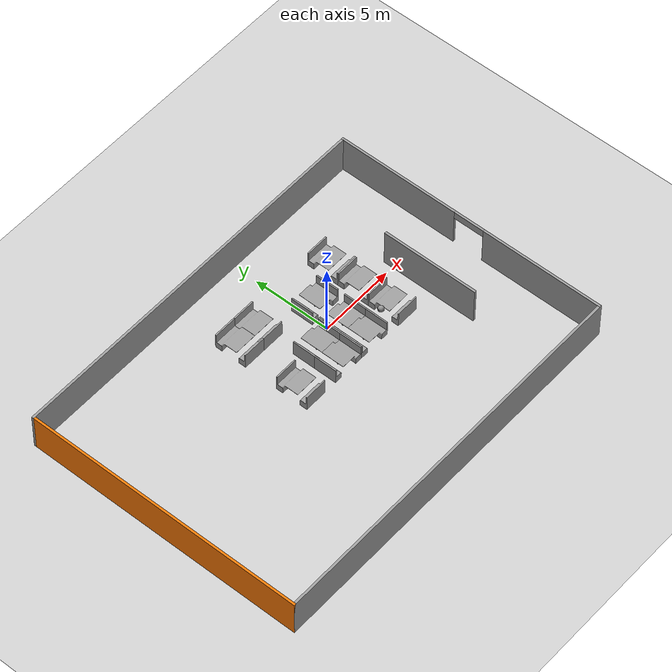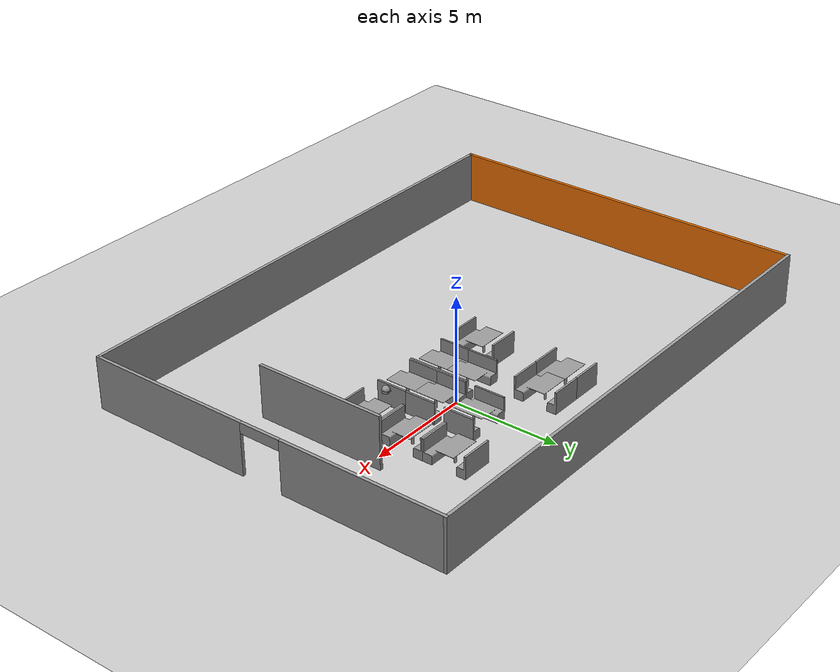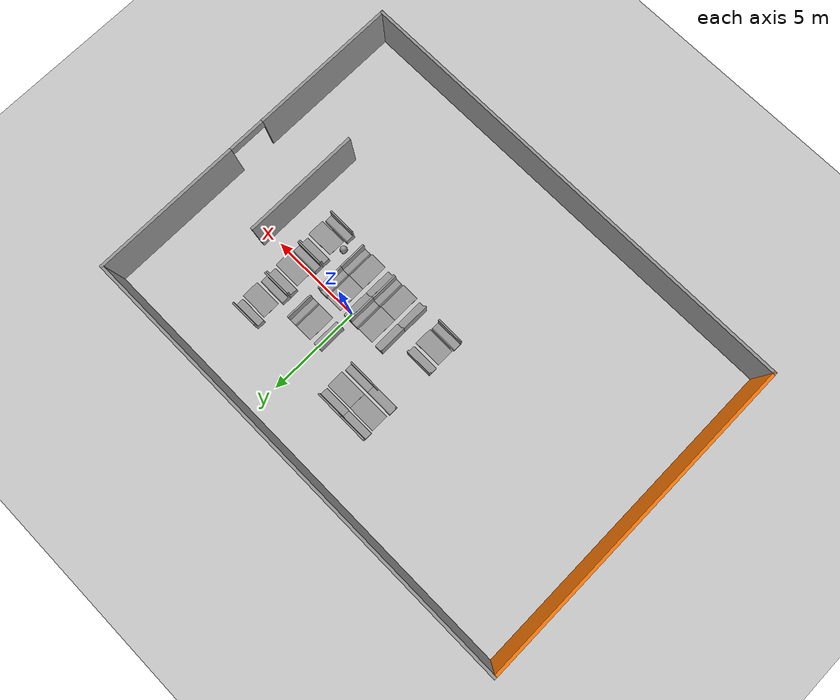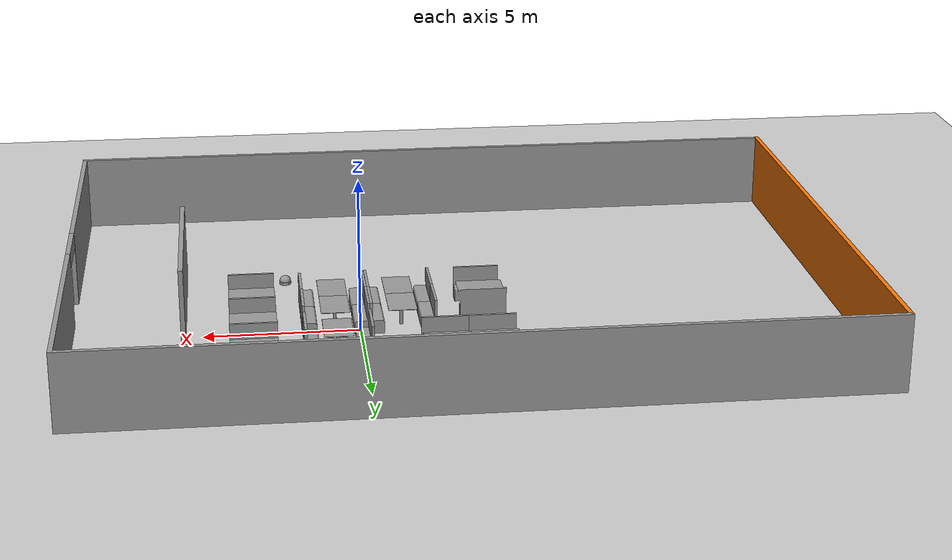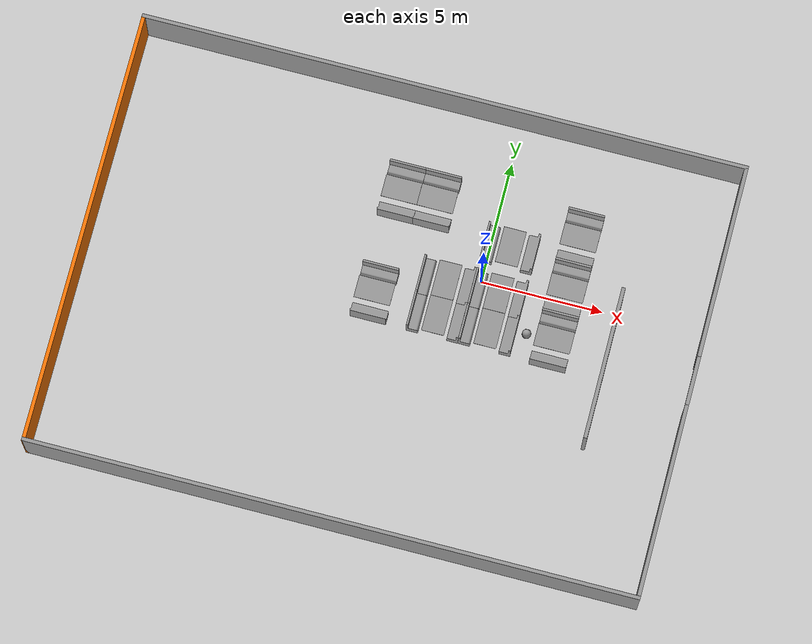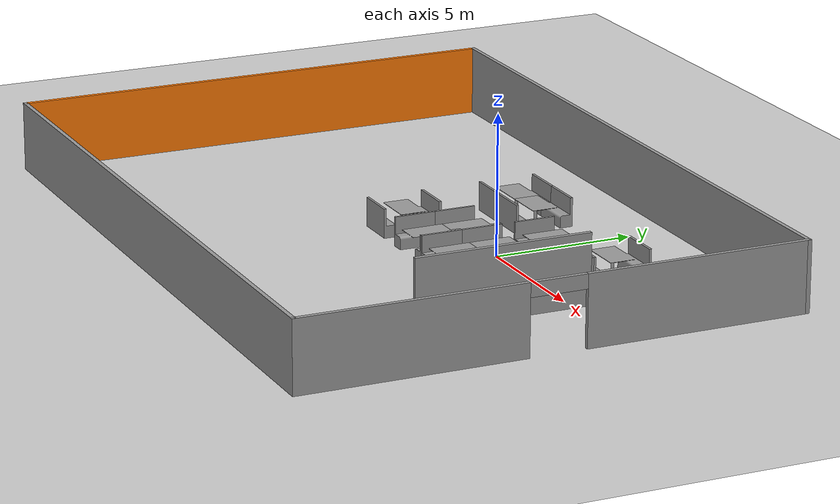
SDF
<sdf version="1.6">
 <world name="default">
  <model name="ground_plane">
   <static>1</static>
   <link name="link">
    <collision name="collision">
     <geometry><plane><normal>0 0 1</normal><size>100 100</size></plane></geometry>
     <surface><friction><ode><mu>100</mu><mu2>50</mu2></ode></friction></surface>
    </collision>
    <visual name="visual">
     <cast_shadows>0</cast_shadows>
     <geometry><plane><normal>0 0 1</normal><size>100 100</size></plane></geometry>
     <material>
      <script><uri>file://media/materials/scripts/gazebo.material</uri><name>Gazebo/Grey</name></script>
     </material>
    </visual>
   </link>
  </model>
  <model name="restaurant">
   <pose>-3.2864 -2.31047 0 0 -0 0</pose>
   <link name="Wall_10">
    <collision name="Wall_10_Collision">
     <geometry><box><size>18 0.15 2.5</size></box></geometry>
     <pose>0 0 1.25 0 -0 0</pose>
    </collision>
    <visual name="Wall_10_Visual">
     <pose>0 0 1.25 0 -0 0</pose>
     <geometry><box><size>18 0.15 2.5</size></box></geometry>
     <material>
      <script><uri>file://media/materials/scripts/gazebo.material</uri><name>Gazebo/Grey</name></script>
      <ambient>0.996078 0.47451 0.0196078 1</ambient>
     </material>
     <meta><layer>0</layer></meta>
    </visual>
    <pose>-12.425 -0.0001 0 0 0 -1.5708</pose>
   </link>
   <link name="Wall_12">
    <collision name="Wall_12_Collision">
     <geometry><box><size>25 0.15 2.5</size></box></geometry>
     <pose>0 0 1.25 0 -0 0</pose>
    </collision>
    <visual name="Wall_12_Visual">
     <pose>0 0 1.25 0 -0 0</pose>
     <geometry><box><size>25 0.15 2.5</size></box></geometry>
     <material>
      <script><uri>file://media/materials/scripts/gazebo.material</uri><name>Gazebo/Grey</name></script>
      <ambient>1 1 1 1</ambient>
     </material>
     <meta><layer>0</layer></meta>
    </visual>
    <pose>-1e-06 -8.9251 0 0 -0 0</pose>
   </link>
   <link name="Wall_14">
    <pose>12.425 1e-05 0 0 -0 1.5708</pose>
    <visual name="Wall_14_Visual_0">
     <pose>-5.00641 0 1.25 0 -0 0</pose>
     <geometry><box><size>7.98717 0.15 2.5</size></box></geometry>
     <material>
      <script><uri>file://media/materials/scripts/gazebo.material</uri><name>Gazebo/Grey</name></script>
      <ambient>1 1 1 1</ambient>
     </material>
     <meta><layer>0</layer></meta>
    </visual>
    <collision name="Wall_14_Collision_0">
     <geometry><box><size>7.98717 0.15 2.5</size></box></geometry>
     <pose>-5.00641 0 1.25 0 -0 0</pose>
    </collision>
    <visual name="Wall_14_Visual_1">
     <pose>4.99359 0 1.25 0 -0 0</pose>
     <geometry><box><size>8.01282 0.15 2.5</size></box></geometry>
     <material>
      <script><uri>file://media/materials/scripts/gazebo.material</uri><name>Gazebo/Grey</name></script>
      <ambient>1 1 1 1</ambient>
     </material>
     <meta><layer>0</layer></meta>
    </visual>
    <collision name="Wall_14_Collision_1">
     <geometry><box><size>8.01282 0.15 2.5</size></box></geometry>
     <pose>4.99359 0 1.25 0 -0 0</pose>
    </collision>
    <visual name="Wall_14_Visual_2">
     <pose>-0.012825 0 2.25 0 -0 0</pose>
     <geometry><box><size>2 0.15 0.5</size></box></geometry>
     <material>
      <script><uri>file://media/materials/scripts/gazebo.material</uri><name>Gazebo/Grey</name></script>
      <ambient>1 1 1 1</ambient>
     </material>
     <meta><layer>0</layer></meta>
    </visual>
    <collision name="Wall_14_Collision_2">
     <geometry><box><size>2 0.15 0.5</size></box></geometry>
     <pose>-0.012825 0 2.25 0 -0 0</pose>
    </collision>
   </link>
   <link name="Wall_16">
    <collision name="Wall_16_Collision">
     <geometry><box><size>6.25 0.15 2.5</size></box></geometry>
     <pose>0 0 1.25 0 -0 0</pose>
    </collision>
    <visual name="Wall_16_Visual">
     <pose>0 0 1.25 0 -0 0</pose>
     <geometry><box><size>6.25 0.15 2.5</size></box></geometry>
     <material>
      <script><uri>file://media/materials/scripts/gazebo.material</uri><name>Gazebo/Grey</name></script>
      <ambient>1 1 1 1</ambient>
     </material>
     <meta><layer>0</layer></meta>
    </visual>
    <pose>8.88051 -0.186574 0 0 0 -1.5708</pose>
   </link>
   <link name="Wall_8">
    <collision name="Wall_8_Collision">
     <geometry><box><size>25 0.15 2.5</size></box></geometry>
     <pose>0 0 1.25 0 -0 0</pose>
    </collision>
    <visual name="Wall_8_Visual">
     <pose>0 0 1.25 0 -0 0</pose>
     <geometry><box><size>25 0.15 2.5</size></box></geometry>
     <material>
      <script><uri>file://media/materials/scripts/gazebo.material</uri><name>Gazebo/Grey</name></script>
      <ambient>1 1 1 1</ambient>
     </material>
     <meta><layer>0</layer></meta>
    </visual>
    <pose>1e-06 8.925 0 0 0 -3.14159</pose>
   </link>
   <static>1</static>
  </model>
  <model name="table_19">
   <link name="link_0">
    <inertial>
     <mass>1</mass>
     <inertia>
      <ixx>0.166667</ixx>
      <ixy>0</ixy>
      <ixz>0</ixz>
      <iyy>0.166667</iyy>
      <iyz>0</iyz>
      <izz>0.166667</izz>
     </inertia>
    </inertial>
    <visual name="visual">
     <pose>-1.9 -1.17 0 0 -0 0</pose>
     <geometry><mesh><uri>model://table/mesh/table.dae</uri><scale>0.6 0.6 0.6</scale></mesh></geometry>
     <material>
      <lighting>1</lighting>
      <script><uri>file://media/materials/scripts/gazebo.material</uri><name>Gazebo/Grey</name></script>
      <shader type="pixel"><normal_map>__default__</normal_map></shader>
      <ambient>0.3 0.3 0.3 1</ambient>
      <diffuse>0.7 0.7 0.7 1</diffuse>
      <specular>0.01 0.01 0.01 1</specular>
      <emissive>0 0 0 1</emissive>
     </material>
    </visual>
    <collision name="collision">
     <geometry><box><size>2.2 1.5 1.1</size></box></geometry>
     <surface>
      <friction>
       <ode><mu>1</mu><mu2>1</mu2><fdir1>0 0 0</fdir1><slip1>0</slip1><slip2>0</slip2></ode>
       <torsional>
        <coefficient>1</coefficient>
        <patch_radius>0</patch_radius>
        <surface_radius>0</surface_radius>
        <use_patch_radius>1</use_patch_radius>
        <ode><slip>0</slip></ode>
       </torsional>
      </friction>
      <bounce><restitution_coefficient>0</restitution_coefficient><threshold>1e+06</threshold></bounce>
      <contact>
       <collide_without_contact>0</collide_without_contact>
       <collide_without_contact_bitmask>1</collide_without_contact_bitmask>
       <collide_bitmask>1</collide_bitmask>
       <ode>
        <soft_cfm>0</soft_cfm>
        <soft_erp>0.2</soft_erp>
        <kp>1e+13</kp>
        <kd>1</kd>
        <max_vel>0.01</max_vel>
        <min_depth>0</min_depth>
       </ode>
       <bullet>
        <split_impulse>1</split_impulse>
        <split_impulse_penetration_threshold>-0.01</split_impulse_penetration_threshold>
        <soft_cfm>0</soft_cfm>
        <soft_erp>0.2</soft_erp>
        <kp>1e+13</kp>
        <kd>1</kd>
       </bullet>
      </contact>
     </surface>
    </collision>
   </link>
   <static>1</static>
   <pose>-4.00965 2.69108 0 0 -0 1.5708</pose>
  </model>
  <model name="table_24">
   <link name="link_0">
    <inertial>
     <mass>1</mass>
     <inertia>
      <ixx>0.166667</ixx>
      <ixy>0</ixy>
      <ixz>0</ixz>
      <iyy>0.166667</iyy>
      <iyz>0</iyz>
      <izz>0.166667</izz>
     </inertia>
    </inertial>
    <visual name="visual">
     <pose>-1.9 -1.17 0 0 -0 0</pose>
     <geometry><mesh><uri>model://table/mesh/table.dae</uri><scale>0.6 0.6 0.6</scale></mesh></geometry>
     <material>
      <lighting>1</lighting>
      <script><uri>file://media/materials/scripts/gazebo.material</uri><name>Gazebo/Grey</name></script>
      <shader type="pixel"><normal_map>__default__</normal_map></shader>
      <ambient>0.3 0.3 0.3 1</ambient>
      <diffuse>0.7 0.7 0.7 1</diffuse>
      <specular>0.01 0.01 0.01 1</specular>
      <emissive>0 0 0 1</emissive>
     </material>
    </visual>
    <collision name="collision">
     <geometry><box><size>2.2 1.5 1.1</size></box></geometry>
     <surface>
      <friction>
       <ode><mu>1</mu><mu2>1</mu2><fdir1>0 0 0</fdir1><slip1>0</slip1><slip2>0</slip2></ode>
       <torsional>
        <coefficient>1</coefficient>
        <patch_radius>0</patch_radius>
        <surface_radius>0</surface_radius>
        <use_patch_radius>1</use_patch_radius>
        <ode><slip>0</slip></ode>
       </torsional>
      </friction>
      <bounce><restitution_coefficient>0</restitution_coefficient><threshold>1e+06</threshold></bounce>
      <contact>
       <collide_without_contact>0</collide_without_contact>
       <collide_without_contact_bitmask>1</collide_without_contact_bitmask>
       <collide_bitmask>1</collide_bitmask>
       <ode>
        <soft_cfm>0</soft_cfm>
        <soft_erp>0.2</soft_erp>
        <kp>1e+13</kp>
        <kd>1</kd>
        <max_vel>0.01</max_vel>
        <min_depth>0</min_depth>
       </ode>
       <bullet>
        <split_impulse>1</split_impulse>
        <split_impulse_penetration_threshold>-0.01</split_impulse_penetration_threshold>
        <soft_cfm>0</soft_cfm>
        <soft_erp>0.2</soft_erp>
        <kp>1e+13</kp>
        <kd>1</kd>
       </bullet>
      </contact>
     </surface>
    </collision>
   </link>
   <static>1</static>
   <pose>0.800593 1.51383 0 0 -0 0</pose>
  </model>
  <model name="table_25">
   <link name="link_0">
    <inertial>
     <mass>1</mass>
     <inertia>
      <ixx>0.166667</ixx>
      <ixy>0</ixy>
      <ixz>0</ixz>
      <iyy>0.166667</iyy>
      <iyz>0</iyz>
      <izz>0.166667</izz>
     </inertia>
    </inertial>
    <visual name="visual">
     <pose>-1.9 -1.17 0 0 -0 0</pose>
     <geometry><mesh><uri>model://table/mesh/table.dae</uri><scale>0.6 0.6 0.6</scale></mesh></geometry>
     <material>
      <lighting>1</lighting>
      <script><uri>file://media/materials/scripts/gazebo.material</uri><name>Gazebo/Grey</name></script>
      <shader type="pixel"><normal_map>__default__</normal_map></shader>
      <ambient>0.3 0.3 0.3 1</ambient>
      <diffuse>0.7 0.7 0.7 1</diffuse>
      <specular>0.01 0.01 0.01 1</specular>
      <emissive>0 0 0 1</emissive>
     </material>
    </visual>
    <collision name="collision">
     <geometry><box><size>2.2 1.5 1.1</size></box></geometry>
     <surface>
      <friction>
       <ode><mu>1</mu><mu2>1</mu2><fdir1>0 0 0</fdir1><slip1>0</slip1><slip2>0</slip2></ode>
       <torsional>
        <coefficient>1</coefficient>
        <patch_radius>0</patch_radius>
        <surface_radius>0</surface_radius>
        <use_patch_radius>1</use_patch_radius>
        <ode><slip>0</slip></ode>
       </torsional>
      </friction>
      <bounce><restitution_coefficient>0</restitution_coefficient><threshold>1e+06</threshold></bounce>
      <contact>
       <collide_without_contact>0</collide_without_contact>
       <collide_without_contact_bitmask>1</collide_without_contact_bitmask>
       <collide_bitmask>1</collide_bitmask>
       <ode>
        <soft_cfm>0</soft_cfm>
        <soft_erp>0.2</soft_erp>
        <kp>1e+13</kp>
        <kd>1</kd>
        <max_vel>0.01</max_vel>
        <min_depth>0</min_depth>
       </ode>
       <bullet>
        <split_impulse>1</split_impulse>
        <split_impulse_penetration_threshold>-0.01</split_impulse_penetration_threshold>
        <soft_cfm>0</soft_cfm>
        <soft_erp>0.2</soft_erp>
        <kp>1e+13</kp>
        <kd>1</kd>
       </bullet>
      </contact>
     </surface>
    </collision>
   </link>
   <static>1</static>
   <pose>0.79719 -0.454003 0 0 -0 0</pose>
  </model>
  <model name="table_26">
   <link name="link_0">
    <inertial>
     <mass>1</mass>
     <inertia>
      <ixx>0.166667</ixx>
      <ixy>0</ixy>
      <ixz>0</ixz>
      <iyy>0.166667</iyy>
      <iyz>0</iyz>
      <izz>0.166667</izz>
     </inertia>
    </inertial>
    <visual name="visual">
     <pose>-1.9 -1.17 0 0 -0 0</pose>
     <geometry><mesh><uri>model://table/mesh/table.dae</uri><scale>0.6 0.6 0.6</scale></mesh></geometry>
     <material>
      <lighting>1</lighting>
      <script><uri>file://media/materials/scripts/gazebo.material</uri><name>Gazebo/Grey</name></script>
      <shader type="pixel"><normal_map>__default__</normal_map></shader>
      <ambient>0.3 0.3 0.3 1</ambient>
      <diffuse>0.7 0.7 0.7 1</diffuse>
      <specular>0.01 0.01 0.01 1</specular>
      <emissive>0 0 0 1</emissive>
     </material>
    </visual>
    <collision name="collision">
     <geometry><box><size>2.2 1.5 1.1</size></box></geometry>
     <surface>
      <friction>
       <ode><mu>1</mu><mu2>1</mu2><fdir1>0 0 0</fdir1><slip1>0</slip1><slip2>0</slip2></ode>
       <torsional>
        <coefficient>1</coefficient>
        <patch_radius>0</patch_radius>
        <surface_radius>0</surface_radius>
        <use_patch_radius>1</use_patch_radius>
        <ode><slip>0</slip></ode>
       </torsional>
      </friction>
      <bounce><restitution_coefficient>0</restitution_coefficient><threshold>1e+06</threshold></bounce>
      <contact>
       <collide_without_contact>0</collide_without_contact>
       <collide_without_contact_bitmask>1</collide_without_contact_bitmask>
       <collide_bitmask>1</collide_bitmask>
       <ode>
        <soft_cfm>0</soft_cfm>
        <soft_erp>0.2</soft_erp>
        <kp>1e+13</kp>
        <kd>1</kd>
        <max_vel>0.01</max_vel>
        <min_depth>0</min_depth>
       </ode>
       <bullet>
        <split_impulse>1</split_impulse>
        <split_impulse_penetration_threshold>-0.01</split_impulse_penetration_threshold>
        <soft_cfm>0</soft_cfm>
        <soft_erp>0.2</soft_erp>
        <kp>1e+13</kp>
        <kd>1</kd>
       </bullet>
      </contact>
     </surface>
    </collision>
   </link>
   <static>1</static>
   <pose>0.797327 -1.94103 0 0 -0 0</pose>
  </model>
  <model name="table_28">
   <link name="link_0">
    <inertial>
     <mass>1</mass>
     <inertia>
      <ixx>0.166667</ixx>
      <ixy>0</ixy>
      <ixz>0</ixz>
      <iyy>0.166667</iyy>
      <iyz>0</iyz>
      <izz>0.166667</izz>
     </inertia>
    </inertial>
    <visual name="visual">
     <pose>-1.9 -1.17 0 0 -0 0</pose>
     <geometry><mesh><uri>model://table/mesh/table.dae</uri><scale>0.6 0.6 0.6</scale></mesh></geometry>
     <material>
      <lighting>1</lighting>
      <script><uri>file://media/materials/scripts/gazebo.material</uri><name>Gazebo/Grey</name></script>
      <shader type="pixel"><normal_map>__default__</normal_map></shader>
      <ambient>0.3 0.3 0.3 1</ambient>
      <diffuse>0.7 0.7 0.7 1</diffuse>
      <specular>0.01 0.01 0.01 1</specular>
      <emissive>0 0 0 1</emissive>
     </material>
    </visual>
    <collision name="collision">
     <geometry><box><size>2.2 1.5 1.1</size></box></geometry>
     <surface>
      <friction>
       <ode><mu>1</mu><mu2>1</mu2><fdir1>0 0 0</fdir1><slip1>0</slip1><slip2>0</slip2></ode>
       <torsional>
        <coefficient>1</coefficient>
        <patch_radius>0</patch_radius>
        <surface_radius>0</surface_radius>
        <use_patch_radius>1</use_patch_radius>
        <ode><slip>0</slip></ode>
       </torsional>
      </friction>
      <bounce><restitution_coefficient>0</restitution_coefficient><threshold>1e+06</threshold></bounce>
      <contact>
       <collide_without_contact>0</collide_without_contact>
       <collide_without_contact_bitmask>1</collide_without_contact_bitmask>
       <collide_bitmask>1</collide_bitmask>
       <ode>
        <soft_cfm>0</soft_cfm>
        <soft_erp>0.2</soft_erp>
        <kp>1e+13</kp>
        <kd>1</kd>
        <max_vel>0.01</max_vel>
        <min_depth>0</min_depth>
       </ode>
       <bullet>
        <split_impulse>1</split_impulse>
        <split_impulse_penetration_threshold>-0.01</split_impulse_penetration_threshold>
        <soft_cfm>0</soft_cfm>
        <soft_erp>0.2</soft_erp>
        <kp>1e+13</kp>
        <kd>1</kd>
       </bullet>
      </contact>
     </surface>
    </collision>
   </link>
   <static>1</static>
   <pose>-4.00625 -1.59763 0 0 -0 1.5708</pose>
  </model>
  <model name="table_31">
   <link name="link_0">
    <inertial>
     <mass>1</mass>
     <inertia>
      <ixx>0.166667</ixx>
      <ixy>0</ixy>
      <ixz>0</ixz>
      <iyy>0.166667</iyy>
      <iyz>0</iyz>
      <izz>0.166667</izz>
     </inertia>
    </inertial>
    <visual name="visual">
     <pose>-1.9 -1.17 0 0 -0 0</pose>
     <geometry><mesh><uri>model://table/mesh/table.dae</uri><scale>0.6 0.6 0.6</scale></mesh></geometry>
     <material>
      <lighting>1</lighting>
      <script><uri>file://media/materials/scripts/gazebo.material</uri><name>Gazebo/Grey</name></script>
      <shader type="pixel"><normal_map>__default__</normal_map></shader>
      <ambient>0.3 0.3 0.3 1</ambient>
      <diffuse>0.7 0.7 0.7 1</diffuse>
      <specular>0.01 0.01 0.01 1</specular>
      <emissive>0 0 0 1</emissive>
     </material>
    </visual>
    <collision name="collision">
     <geometry><box><size>2.2 1.5 1.1</size></box></geometry>
     <surface>
      <friction>
       <ode><mu>1</mu><mu2>1</mu2><fdir1>0 0 0</fdir1><slip1>0</slip1><slip2>0</slip2></ode>
       <torsional>
        <coefficient>1</coefficient>
        <patch_radius>0</patch_radius>
        <surface_radius>0</surface_radius>
        <use_patch_radius>1</use_patch_radius>
        <ode><slip>0</slip></ode>
       </torsional>
      </friction>
      <bounce><restitution_coefficient>0</restitution_coefficient><threshold>1e+06</threshold></bounce>
      <contact>
       <collide_without_contact>0</collide_without_contact>
       <collide_without_contact_bitmask>1</collide_without_contact_bitmask>
       <collide_bitmask>1</collide_bitmask>
       <ode>
        <soft_cfm>0</soft_cfm>
        <soft_erp>0.2</soft_erp>
        <kp>1e+13</kp>
        <kd>1</kd>
        <max_vel>0.01</max_vel>
        <min_depth>0</min_depth>
       </ode>
       <bullet>
        <split_impulse>1</split_impulse>
        <split_impulse_penetration_threshold>-0.01</split_impulse_penetration_threshold>
        <soft_cfm>0</soft_cfm>
        <soft_erp>0.2</soft_erp>
        <kp>1e+13</kp>
        <kd>1</kd>
       </bullet>
      </contact>
     </surface>
    </collision>
   </link>
   <static>1</static>
   <pose>-1.34795 -1.94345 0 0 -0 0</pose>
  </model>
  <model name="table_32">
   <link name="link_0">
    <inertial>
     <mass>1</mass>
     <inertia>
      <ixx>0.166667</ixx>
      <ixy>0</ixy>
      <ixz>0</ixz>
      <iyy>0.166667</iyy>
      <iyz>0</iyz>
      <izz>0.166667</izz>
     </inertia>
    </inertial>
    <visual name="visual">
     <pose>-1.9 -1.17 0 0 -0 0</pose>
     <geometry><mesh><uri>model://table/mesh/table.dae</uri><scale>0.6 0.6 0.6</scale></mesh></geometry>
     <material>
      <lighting>1</lighting>
      <script><uri>file://media/materials/scripts/gazebo.material</uri><name>Gazebo/Grey</name></script>
      <shader type="pixel"><normal_map>__default__</normal_map></shader>
      <ambient>0.3 0.3 0.3 1</ambient>
      <diffuse>0.7 0.7 0.7 1</diffuse>
      <specular>0.01 0.01 0.01 1</specular>
      <emissive>0 0 0 1</emissive>
     </material>
    </visual>
    <collision name="collision">
     <geometry><box><size>2.2 1.5 1.1</size></box></geometry>
     <surface>
      <friction>
       <ode><mu>1</mu><mu2>1</mu2><fdir1>0 0 0</fdir1><slip1>0</slip1><slip2>0</slip2></ode>
       <torsional>
        <coefficient>1</coefficient>
        <patch_radius>0</patch_radius>
        <surface_radius>0</surface_radius>
        <use_patch_radius>1</use_patch_radius>
        <ode><slip>0</slip></ode>
       </torsional>
      </friction>
      <bounce><restitution_coefficient>0</restitution_coefficient><threshold>1e+06</threshold></bounce>
      <contact>
       <collide_without_contact>0</collide_without_contact>
       <collide_without_contact_bitmask>1</collide_without_contact_bitmask>
       <collide_bitmask>1</collide_bitmask>
       <ode>
        <soft_cfm>0</soft_cfm>
        <soft_erp>0.2</soft_erp>
        <kp>1e+13</kp>
        <kd>1</kd>
        <max_vel>0.01</max_vel>
        <min_depth>0</min_depth>
       </ode>
       <bullet>
        <split_impulse>1</split_impulse>
        <split_impulse_penetration_threshold>-0.01</split_impulse_penetration_threshold>
        <soft_cfm>0</soft_cfm>
        <soft_erp>0.2</soft_erp>
        <kp>1e+13</kp>
        <kd>1</kd>
       </bullet>
      </contact>
     </surface>
    </collision>
   </link>
   <static>1</static>
   <pose>-1.34658 -0.457264 0 0 -0 0</pose>
  </model>
  <model name="table_33">
   <link name="link_0">
    <inertial>
     <mass>1</mass>
     <inertia>
      <ixx>0.166667</ixx>
      <ixy>0</ixy>
      <ixz>0</ixz>
      <iyy>0.166667</iyy>
      <iyz>0</iyz>
      <izz>0.166667</izz>
     </inertia>
    </inertial>
    <visual name="visual">
     <pose>-1.9 -1.17 0 0 -0 0</pose>
     <geometry><mesh><uri>model://table/mesh/table.dae</uri><scale>0.6 0.6 0.6</scale></mesh></geometry>
     <material>
      <lighting>1</lighting>
      <script><uri>file://media/materials/scripts/gazebo.material</uri><name>Gazebo/Grey</name></script>
      <shader type="pixel"><normal_map>__default__</normal_map></shader>
      <ambient>0.3 0.3 0.3 1</ambient>
      <diffuse>0.7 0.7 0.7 1</diffuse>
      <specular>0.01 0.01 0.01 1</specular>
      <emissive>0 0 0 1</emissive>
     </material>
    </visual>
    <collision name="collision">
     <geometry><box><size>2.2 1.5 1.1</size></box></geometry>
     <surface>
      <friction>
       <ode><mu>1</mu><mu2>1</mu2><fdir1>0 0 0</fdir1><slip1>0</slip1><slip2>0</slip2></ode>
       <torsional>
        <coefficient>1</coefficient>
        <patch_radius>0</patch_radius>
        <surface_radius>0</surface_radius>
        <use_patch_radius>1</use_patch_radius>
        <ode><slip>0</slip></ode>
       </torsional>
      </friction>
      <bounce><restitution_coefficient>0</restitution_coefficient><threshold>1e+06</threshold></bounce>
      <contact>
       <collide_without_contact>0</collide_without_contact>
       <collide_without_contact_bitmask>1</collide_without_contact_bitmask>
       <collide_bitmask>1</collide_bitmask>
       <ode>
        <soft_cfm>0</soft_cfm>
        <soft_erp>0.2</soft_erp>
        <kp>1e+13</kp>
        <kd>1</kd>
        <max_vel>0.01</max_vel>
        <min_depth>0</min_depth>
       </ode>
       <bullet>
        <split_impulse>1</split_impulse>
        <split_impulse_penetration_threshold>-0.01</split_impulse_penetration_threshold>
        <soft_cfm>0</soft_cfm>
        <soft_erp>0.2</soft_erp>
        <kp>1e+13</kp>
        <kd>1</kd>
       </bullet>
      </contact>
     </surface>
    </collision>
   </link>
   <static>1</static>
   <pose>-2.52315 2.69104 0 0 -0 1.5708</pose>
  </model>
  <model name="table_34">
   <link name="link_0">
    <inertial>
     <mass>1</mass>
     <inertia>
      <ixx>0.166667</ixx>
      <ixy>0</ixy>
      <ixz>0</ixz>
      <iyy>0.166667</iyy>
      <iyz>0</iyz>
      <izz>0.166667</izz>
     </inertia>
    </inertial>
    <visual name="visual">
     <pose>-1.9 -1.17 0 0 -0 0</pose>
     <geometry><mesh><uri>model://table/mesh/table.dae</uri><scale>0.6 0.6 0.6</scale></mesh></geometry>
     <material>
      <lighting>1</lighting>
      <script><uri>file://media/materials/scripts/gazebo.material</uri><name>Gazebo/Grey</name></script>
      <shader type="pixel"><normal_map>__default__</normal_map></shader>
      <ambient>0.3 0.3 0.3 1</ambient>
      <diffuse>0.7 0.7 0.7 1</diffuse>
      <specular>0.01 0.01 0.01 1</specular>
      <emissive>0 0 0 1</emissive>
     </material>
    </visual>
    <collision name="collision">
     <geometry><box><size>2.2 1.5 1.1</size></box></geometry>
     <surface>
      <friction>
       <ode><mu>1</mu><mu2>1</mu2><fdir1>0 0 0</fdir1><slip1>0</slip1><slip2>0</slip2></ode>
       <torsional>
        <coefficient>1</coefficient>
        <patch_radius>0</patch_radius>
        <surface_radius>0</surface_radius>
        <use_patch_radius>1</use_patch_radius>
        <ode><slip>0</slip></ode>
       </torsional>
      </friction>
      <bounce><restitution_coefficient>0</restitution_coefficient><threshold>1e+06</threshold></bounce>
      <contact>
       <collide_without_contact>0</collide_without_contact>
       <collide_without_contact_bitmask>1</collide_without_contact_bitmask>
       <collide_bitmask>1</collide_bitmask>
       <ode>
        <soft_cfm>0</soft_cfm>
        <soft_erp>0.2</soft_erp>
        <kp>1e+13</kp>
        <kd>1</kd>
        <max_vel>0.01</max_vel>
        <min_depth>0</min_depth>
       </ode>
       <bullet>
        <split_impulse>1</split_impulse>
        <split_impulse_penetration_threshold>-0.01</split_impulse_penetration_threshold>
        <soft_cfm>0</soft_cfm>
        <soft_erp>0.2</soft_erp>
        <kp>1e+13</kp>
        <kd>1</kd>
       </bullet>
      </contact>
     </surface>
    </collision>
   </link>
   <static>1</static>
   <pose>3.41291 2.58224 0 0 -0 1.5708</pose>
  </model>
  <model name="table_35">
   <link name="link_0">
    <inertial>
     <mass>1</mass>
     <inertia>
      <ixx>0.166667</ixx>
      <ixy>0</ixy>
      <ixz>0</ixz>
      <iyy>0.166667</iyy>
      <iyz>0</iyz>
      <izz>0.166667</izz>
     </inertia>
    </inertial>
    <visual name="visual">
     <pose>-1.9 -1.17 0 0 -0 0</pose>
     <geometry><mesh><uri>model://table/mesh/table.dae</uri><scale>0.6 0.6 0.6</scale></mesh></geometry>
     <material>
      <lighting>1</lighting>
      <script><uri>file://media/materials/scripts/gazebo.material</uri><name>Gazebo/Grey</name></script>
      <shader type="pixel"><normal_map>__default__</normal_map></shader>
      <ambient>0.3 0.3 0.3 1</ambient>
      <diffuse>0.7 0.7 0.7 1</diffuse>
      <specular>0.01 0.01 0.01 1</specular>
      <emissive>0 0 0 1</emissive>
     </material>
    </visual>
    <collision name="collision">
     <geometry><box><size>2.2 1.5 1.1</size></box></geometry>
     <surface>
      <friction>
       <ode><mu>1</mu><mu2>1</mu2><fdir1>0 0 0</fdir1><slip1>0</slip1><slip2>0</slip2></ode>
       <torsional>
        <coefficient>1</coefficient>
        <patch_radius>0</patch_radius>
        <surface_radius>0</surface_radius>
        <use_patch_radius>1</use_patch_radius>
        <ode><slip>0</slip></ode>
       </torsional>
      </friction>
      <bounce><restitution_coefficient>0</restitution_coefficient><threshold>1e+06</threshold></bounce>
      <contact>
       <collide_without_contact>0</collide_without_contact>
       <collide_without_contact_bitmask>1</collide_without_contact_bitmask>
       <collide_bitmask>1</collide_bitmask>
       <ode>
        <soft_cfm>0</soft_cfm>
        <soft_erp>0.2</soft_erp>
        <kp>1e+13</kp>
        <kd>1</kd>
        <max_vel>0.01</max_vel>
        <min_depth>0</min_depth>
       </ode>
       <bullet>
        <split_impulse>1</split_impulse>
        <split_impulse_penetration_threshold>-0.01</split_impulse_penetration_threshold>
        <soft_cfm>0</soft_cfm>
        <soft_erp>0.2</soft_erp>
        <kp>1e+13</kp>
        <kd>1</kd>
       </bullet>
      </contact>
     </surface>
    </collision>
   </link>
   <static>1</static>
   <pose>3.41248 0.438912 0 0 -0 1.5708</pose>
  </model>
  <model name="table_37">
   <link name="link_0">
    <inertial>
     <mass>1</mass>
     <inertia>
      <ixx>0.166667</ixx>
      <ixy>0</ixy>
      <ixz>0</ixz>
      <iyy>0.166667</iyy>
      <iyz>0</iyz>
      <izz>0.166667</izz>
     </inertia>
    </inertial>
    <visual name="visual">
     <pose>-1.9 -1.17 0 0 -0 0</pose>
     <geometry><mesh><uri>model://table/mesh/table.dae</uri><scale>0.6 0.6 0.6</scale></mesh></geometry>
     <material>
      <lighting>1</lighting>
      <script><uri>file://media/materials/scripts/gazebo.material</uri><name>Gazebo/Grey</name></script>
      <shader type="pixel"><normal_map>__default__</normal_map></shader>
      <ambient>0.3 0.3 0.3 1</ambient>
      <diffuse>0.7 0.7 0.7 1</diffuse>
      <specular>0.01 0.01 0.01 1</specular>
      <emissive>0 0 0 1</emissive>
     </material>
    </visual>
    <collision name="collision">
     <geometry><box><size>2.2 1.5 1.1</size></box></geometry>
     <surface>
      <friction>
       <ode><mu>1</mu><mu2>1</mu2><fdir1>0 0 0</fdir1><slip1>0</slip1><slip2>0</slip2></ode>
       <torsional>
        <coefficient>1</coefficient>
        <patch_radius>0</patch_radius>
        <surface_radius>0</surface_radius>
        <use_patch_radius>1</use_patch_radius>
        <ode><slip>0</slip></ode>
       </torsional>
      </friction>
      <bounce><restitution_coefficient>0</restitution_coefficient><threshold>1e+06</threshold></bounce>
      <contact>
       <collide_without_contact>0</collide_without_contact>
       <collide_without_contact_bitmask>1</collide_without_contact_bitmask>
       <collide_bitmask>1</collide_bitmask>
       <ode>
        <soft_cfm>0</soft_cfm>
        <soft_erp>0.2</soft_erp>
        <kp>1e+13</kp>
        <kd>1</kd>
        <max_vel>0.01</max_vel>
        <min_depth>0</min_depth>
       </ode>
       <bullet>
        <split_impulse>1</split_impulse>
        <split_impulse_penetration_threshold>-0.01</split_impulse_penetration_threshold>
        <soft_cfm>0</soft_cfm>
        <soft_erp>0.2</soft_erp>
        <kp>1e+13</kp>
        <kd>1</kd>
       </bullet>
      </contact>
     </surface>
    </collision>
   </link>
   <static>1</static>
   <pose>3.41235 -1.70428 0 0 -0 1.5708</pose>
  </model>
  <model name="restaurantrobot_4">
   <link name="link_0">
    <pose>-0.075 0.035 -0.02 0 -0 0</pose>
    <inertial>
     <mass>1</mass>
     <inertia><ixx>0.145833</ixx><ixy>0</ixy><ixz>0</ixz><iyy>0.145833</iyy><iyz>0</iyz><izz>0.125</izz></inertia>
    </inertial>
    <visual name="visual">
     <geometry><mesh><uri>model://robot/mesh/body01.dae</uri></mesh></geometry>
     <material>
      <lighting>1</lighting>
      <script><uri>file://media/materials/scripts/gazebo.material</uri><name>Gazebo/Grey</name></script>
      <shader type="pixel"><normal_map>__default__</normal_map></shader>
      <ambient>0.4 0.4 0.4 1</ambient>
      <diffuse>0.7 0.7 0.7 1</diffuse>
      <specular>1 1 1 0</specular>
      <emissive>0 0 0 1</emissive>
     </material>
    </visual>
    <collision name="collision">
     <pose>0 0 0.05 0 -0 0</pose>
     <geometry><cylinder><radius>0.18</radius><length>0.1</length></cylinder></geometry>
     <surface>
      <friction>
       <ode><mu>1</mu><mu2>1</mu2><fdir1>0 0 0</fdir1><slip1>0</slip1><slip2>0</slip2></ode>
       <torsional>
        <coefficient>1</coefficient>
        <patch_radius>0</patch_radius>
        <surface_radius>0</surface_radius>
        <use_patch_radius>1</use_patch_radius>
        <ode><slip>0</slip></ode>
       </torsional>
      </friction>
      <bounce><restitution_coefficient>0</restitution_coefficient><threshold>1e+06</threshold></bounce>
      <contact>
       <collide_without_contact>0</collide_without_contact>
       <collide_without_contact_bitmask>1</collide_without_contact_bitmask>
       <collide_bitmask>1</collide_bitmask>
       <ode>
        <soft_cfm>0</soft_cfm>
        <soft_erp>0.2</soft_erp>
        <kp>1e+13</kp>
        <kd>1</kd>
        <max_vel>0.01</max_vel>
        <min_depth>0</min_depth>
       </ode>
       <bullet>
        <split_impulse>1</split_impulse>
        <split_impulse_penetration_threshold>-0.01</split_impulse_penetration_threshold>
        <soft_cfm>0</soft_cfm>
        <soft_erp>0.2</soft_erp>
        <kp>1e+13</kp>
        <kd>1</kd>
       </bullet>
      </contact>
     </surface>
    </collision>
   </link>
   <link name="link_1">
    <pose>-0.075 -0.105 0.012 -1.5708 0 0</pose>
    <inertial>
     <mass>1.23801</mass>
     <inertia>
      <ixx>0.00040938</ixx>
      <ixy>0</ixy>
      <ixz>0</ixz>
      <iyy>0.00040938</iyy>
      <iyz>0</iyz>
      <izz>0.00068979</izz>
     </inertia>
    </inertial>
    <visual name="visual">
     <geometry><cylinder><radius>0.0333821</radius><length>0.025</length></cylinder></geometry>
     <material>
      <lighting>1</lighting>
      <script><uri>file://media/materials/scripts/gazebo.material</uri><name>Gazebo/Grey</name></script>
      <shader type="pixel"><normal_map>__default__</normal_map></shader>
      <ambient>0.3 0.3 0.3 1</ambient>
      <diffuse>0.7 0.7 0.7 1</diffuse>
      <specular>0.01 0.01 0.01 1</specular>
      <emissive>0 0 0 1</emissive>
     </material>
    </visual>
    <collision name="collision">
     <geometry><cylinder><radius>0.034</radius><length>0.025</length></cylinder></geometry>
     <surface>
      <friction>
       <ode><mu>1</mu><mu2>1</mu2><fdir1>0 0 0</fdir1><slip1>0</slip1><slip2>0</slip2></ode>
       <torsional>
        <coefficient>1</coefficient>
        <patch_radius>0</patch_radius>
        <surface_radius>0</surface_radius>
        <use_patch_radius>1</use_patch_radius>
        <ode><slip>0</slip></ode>
       </torsional>
      </friction>
      <bounce><restitution_coefficient>0</restitution_coefficient><threshold>1e+06</threshold></bounce>
      <contact>
       <collide_without_contact>0</collide_without_contact>
       <collide_without_contact_bitmask>1</collide_without_contact_bitmask>
       <collide_bitmask>1</collide_bitmask>
       <ode>
        <soft_cfm>0</soft_cfm>
        <soft_erp>0.2</soft_erp>
        <kp>1e+13</kp>
        <kd>1</kd>
        <max_vel>0.01</max_vel>
        <min_depth>0</min_depth>
       </ode>
       <bullet>
        <split_impulse>1</split_impulse>
        <split_impulse_penetration_threshold>-0.01</split_impulse_penetration_threshold>
        <soft_cfm>0</soft_cfm>
        <soft_erp>0.2</soft_erp>
        <kp>1e+13</kp>
        <kd>1</kd>
       </bullet>
      </contact>
     </surface>
    </collision>
   </link>
   <link name="link_1_0">
    <pose>-0.075 0.035 0.17 0 -0 0</pose>
    <inertial>
     <mass>1</mass>
     <inertia><ixx>0.145833</ixx><ixy>0</ixy><ixz>0</ixz><iyy>0.145833</iyy><iyz>0</iyz><izz>0.125</izz></inertia>
    </inertial>
    <visual name="visual">
     <pose>0 0 -0.09 0 -0 0</pose>
     <geometry><mesh><uri>model://robot/mesh/cover.dae</uri></mesh></geometry>
     <material>
      <lighting>1</lighting>
      <script><uri>file://media/materials/scripts/gazebo.material</uri><name>Gazebo/Grey</name></script>
      <shader type="pixel"><normal_map>__default__</normal_map></shader>
      <ambient>0.3 0.3 0.3 1</ambient>
      <diffuse>0.7 0.7 0.7 1</diffuse>
      <specular>0.01 0.01 0.01 1</specular>
      <emissive>0 0 0 1</emissive>
     </material>
    </visual>
    <collision name="collision">
     <geometry><cylinder><radius>0.18</radius><length>0.18</length></cylinder></geometry>
     <surface>
      <friction>
       <ode><mu>1</mu><mu2>1</mu2><fdir1>0 0 0</fdir1><slip1>0</slip1><slip2>0</slip2></ode>
       <torsional>
        <coefficient>1</coefficient>
        <patch_radius>0</patch_radius>
        <surface_radius>0</surface_radius>
        <use_patch_radius>1</use_patch_radius>
        <ode><slip>0</slip></ode>
       </torsional>
      </friction>
      <bounce><restitution_coefficient>0</restitution_coefficient><threshold>1e+06</threshold></bounce>
      <contact>
       <collide_without_contact>0</collide_without_contact>
       <collide_without_contact_bitmask>1</collide_without_contact_bitmask>
       <collide_bitmask>1</collide_bitmask>
       <ode>
        <soft_cfm>0</soft_cfm>
        <soft_erp>0.2</soft_erp>
        <kp>1e+13</kp>
        <kd>1</kd>
        <max_vel>0.01</max_vel>
        <min_depth>0</min_depth>
       </ode>
       <bullet>
        <split_impulse>1</split_impulse>
        <split_impulse_penetration_threshold>-0.01</split_impulse_penetration_threshold>
        <soft_cfm>0</soft_cfm>
        <soft_erp>0.2</soft_erp>
        <kp>1e+13</kp>
        <kd>1</kd>
       </bullet>
      </contact>
     </surface>
    </collision>
   </link>
   <link name="link_1_clone">
    <pose>-0.075 0.175 0.012 -1.5708 0 0</pose>
    <inertial>
     <mass>1.23801</mass>
     <inertia>
      <ixx>0.00040938</ixx>
      <ixy>0</ixy>
      <ixz>0</ixz>
      <iyy>0.00040938</iyy>
      <iyz>0</iyz>
      <izz>0.00068979</izz>
     </inertia>
    </inertial>
    <visual name="visual">
     <geometry><cylinder><radius>0.034</radius><length>0.025</length></cylinder></geometry>
     <material>
      <lighting>1</lighting>
      <script><uri>file://media/materials/scripts/gazebo.material</uri><name>Gazebo/Grey</name></script>
      <shader type="pixel"><normal_map>__default__</normal_map></shader>
      <ambient>0.3 0.3 0.3 1</ambient>
      <diffuse>0.7 0.7 0.7 1</diffuse>
      <specular>0.01 0.01 0.01 1</specular>
      <emissive>0 0 0 1</emissive>
     </material>
    </visual>
    <collision name="collision">
     <geometry><cylinder><radius>0.034</radius><length>0.025</length></cylinder></geometry>
     <surface>
      <friction>
       <ode><mu>1</mu><mu2>1</mu2><fdir1>0 0 0</fdir1><slip1>0</slip1><slip2>0</slip2></ode>
       <torsional>
        <coefficient>1</coefficient>
        <patch_radius>0</patch_radius>
        <surface_radius>0</surface_radius>
        <use_patch_radius>1</use_patch_radius>
        <ode><slip>0</slip></ode>
       </torsional>
      </friction>
      <bounce><restitution_coefficient>0</restitution_coefficient><threshold>1e+06</threshold></bounce>
      <contact>
       <collide_without_contact>0</collide_without_contact>
       <collide_without_contact_bitmask>1</collide_without_contact_bitmask>
       <collide_bitmask>1</collide_bitmask>
       <ode>
        <soft_cfm>0</soft_cfm>
        <soft_erp>0.2</soft_erp>
        <kp>1e+13</kp>
        <kd>1</kd>
        <max_vel>0.01</max_vel>
        <min_depth>0</min_depth>
       </ode>
       <bullet>
        <split_impulse>1</split_impulse>
        <split_impulse_penetration_threshold>-0.01</split_impulse_penetration_threshold>
        <soft_cfm>0</soft_cfm>
        <soft_erp>0.2</soft_erp>
        <kp>1e+13</kp>
        <kd>1</kd>
       </bullet>
      </contact>
     </surface>
    </collision>
   </link>
   <link name="link_2">
    <pose>0.065 0.035 -0.012 0 -0 0</pose>
    <inertial>
     <mass>1.585e-05</mass>
     <inertia><ixx>0</ixx><ixy>0</ixy><ixz>0</ixz><iyy>0</iyy><iyz>0</iyz><izz>0</izz></inertia>
    </inertial>
    <visual name="visual">
     <geometry><sphere><radius>0.01</radius></sphere></geometry>
     <material>
      <lighting>1</lighting>
      <script><uri>file://media/materials/scripts/gazebo.material</uri><name>Gazebo/Grey</name></script>
      <shader type="pixel"><normal_map>__default__</normal_map></shader>
      <ambient>0.3 0.3 0.3 1</ambient>
      <diffuse>0.7 0.7 0.7 1</diffuse>
      <specular>0.01 0.01 0.01 1</specular>
      <emissive>0 0 0 1</emissive>
     </material>
    </visual>
    <collision name="collision">
     <geometry><sphere><radius>0.01</radius></sphere></geometry>
     <surface>
      <friction>
       <ode><mu>1</mu><mu2>1</mu2><fdir1>0 0 0</fdir1><slip1>0</slip1><slip2>0</slip2></ode>
       <torsional>
        <coefficient>1</coefficient>
        <patch_radius>0</patch_radius>
        <surface_radius>0</surface_radius>
        <use_patch_radius>1</use_patch_radius>
        <ode><slip>0</slip></ode>
       </torsional>
      </friction>
      <bounce><restitution_coefficient>0</restitution_coefficient><threshold>1e+06</threshold></bounce>
      <contact>
       <collide_without_contact>0</collide_without_contact>
       <collide_without_contact_bitmask>1</collide_without_contact_bitmask>
       <collide_bitmask>1</collide_bitmask>
       <ode>
        <soft_cfm>0</soft_cfm>
        <soft_erp>0.2</soft_erp>
        <kp>1e+13</kp>
        <kd>1</kd>
        <max_vel>0.01</max_vel>
        <min_depth>0</min_depth>
       </ode>
       <bullet>
        <split_impulse>1</split_impulse>
        <split_impulse_penetration_threshold>-0.01</split_impulse_penetration_threshold>
        <soft_cfm>0</soft_cfm>
        <soft_erp>0.2</soft_erp>
        <kp>1e+13</kp>
        <kd>1</kd>
       </bullet>
      </contact>
     </surface>
    </collision>
   </link>
   <link name="link_2_clone">
    <pose>-0.215 0.035 -0.012 0 -0 0</pose>
    <inertial>
     <mass>1.585e-05</mass>
     <inertia><ixx>0</ixx><ixy>0</ixy><ixz>0</ixz><iyy>0</iyy><iyz>0</iyz><izz>0</izz></inertia>
    </inertial>
    <visual name="visual">
     <geometry><sphere><radius>0.01</radius></sphere></geometry>
     <material>
      <lighting>1</lighting>
      <script><uri>file://media/materials/scripts/gazebo.material</uri><name>Gazebo/Grey</name></script>
      <shader type="pixel"><normal_map>__default__</normal_map></shader>
      <ambient>0.3 0.3 0.3 1</ambient>
      <diffuse>0.7 0.7 0.7 1</diffuse>
      <specular>0.01 0.01 0.01 1</specular>
      <emissive>0 0 0 1</emissive>
     </material>
    </visual>
    <collision name="collision">
     <geometry><sphere><radius>0.01</radius></sphere></geometry>
     <surface>
      <friction>
       <ode><mu>1</mu><mu2>1</mu2><fdir1>0 0 0</fdir1><slip1>0</slip1><slip2>0</slip2></ode>
       <torsional>
        <coefficient>1</coefficient>
        <patch_radius>0</patch_radius>
        <surface_radius>0</surface_radius>
        <use_patch_radius>1</use_patch_radius>
        <ode><slip>0</slip></ode>
       </torsional>
      </friction>
      <bounce><restitution_coefficient>0</restitution_coefficient><threshold>1e+06</threshold></bounce>
      <contact>
       <collide_without_contact>0</collide_without_contact>
       <collide_without_contact_bitmask>1</collide_without_contact_bitmask>
       <collide_bitmask>1</collide_bitmask>
       <ode>
        <soft_cfm>0</soft_cfm>
        <soft_erp>0.2</soft_erp>
        <kp>1e+13</kp>
        <kd>1</kd>
        <max_vel>0.01</max_vel>
        <min_depth>0</min_depth>
       </ode>
       <bullet>
        <split_impulse>1</split_impulse>
        <split_impulse_penetration_threshold>-0.01</split_impulse_penetration_threshold>
        <soft_cfm>0</soft_cfm>
        <soft_erp>0.2</soft_erp>
        <kp>1e+13</kp>
        <kd>1</kd>
       </bullet>
      </contact>
     </surface>
    </collision>
   </link>
   <joint name="link_0_JOINT_0" type="revolute">
    <parent>link_0</parent>
    <child>link_1</child>
    <axis>
     <xyz>0 0 -1</xyz>
     <use_parent_model_frame>0</use_parent_model_frame>
     <limit>
      <lower>-1.79769e+308</lower>
      <upper>1.79769e+308</upper>
      <effort>-1</effort>
      <velocity>-1</velocity>
     </limit>
     <dynamics>
      <spring_reference>0</spring_reference>
      <spring_stiffness>0</spring_stiffness>
      <damping>0</damping>
     </dynamics>
    </axis>
    <physics>
     <ode><limit><cfm>0</cfm><erp>0.2</erp></limit><suspension><cfm>0</cfm><erp>0.2</erp></suspension></ode>
    </physics>
   </joint>
   <joint name="link_0_JOINT_1" type="revolute">
    <parent>link_0</parent>
    <child>link_1_clone</child>
    <axis>
     <xyz>0 0 1</xyz>
     <use_parent_model_frame>0</use_parent_model_frame>
     <limit>
      <lower>-1.79769e+308</lower>
      <upper>1.79769e+308</upper>
      <effort>-1</effort>
      <velocity>-1</velocity>
     </limit>
     <dynamics>
      <spring_reference>0</spring_reference>
      <spring_stiffness>0</spring_stiffness>
      <damping>0</damping>
     </dynamics>
    </axis>
    <physics>
     <ode><limit><cfm>0</cfm><erp>0.2</erp></limit><suspension><cfm>0</cfm><erp>0.2</erp></suspension></ode>
    </physics>
   </joint>
   <joint name="link_0_JOINT_2" type="ball">
    <parent>link_0</parent>
    <child>link_2</child>
    <physics>
     <ode><limit><cfm>0</cfm><erp>0.2</erp></limit><suspension><cfm>0</cfm><erp>0.2</erp></suspension></ode>
    </physics>
   </joint>
   <joint name="link_0_JOINT_3" type="ball">
    <parent>link_0</parent>
    <child>link_2_clone</child>
    <physics>
     <ode><limit><cfm>0</cfm><erp>0.2</erp></limit><suspension><cfm>0</cfm><erp>0.2</erp></suspension></ode>
    </physics>
   </joint>
   <joint name="link_0_JOINT_4" type="revolute">
    <parent>link_0</parent>
    <child>link_1_0</child>
    <axis>
     <xyz>0 1 0</xyz>
     <use_parent_model_frame>0</use_parent_model_frame>
     <limit>
      <lower>-1.79769e+308</lower>
      <upper>1.79769e+308</upper>
      <effort>-1</effort>
      <velocity>-1</velocity>
     </limit>
     <dynamics>
      <spring_reference>0</spring_reference>
      <spring_stiffness>0</spring_stiffness>
      <damping>0</damping>
     </dynamics>
    </axis>
    <physics>
     <ode><limit><cfm>0</cfm><erp>0.2</erp></limit><suspension><cfm>0</cfm><erp>0.2</erp></suspension></ode>
    </physics>
   </joint>
   <static>0</static>
   <allow_auto_disable>0</allow_auto_disable>
   <pose>2.3379 -1.77444 1.022 -2e-06 -0 1.57079</pose>
  </model>
 </world>
</sdf>
